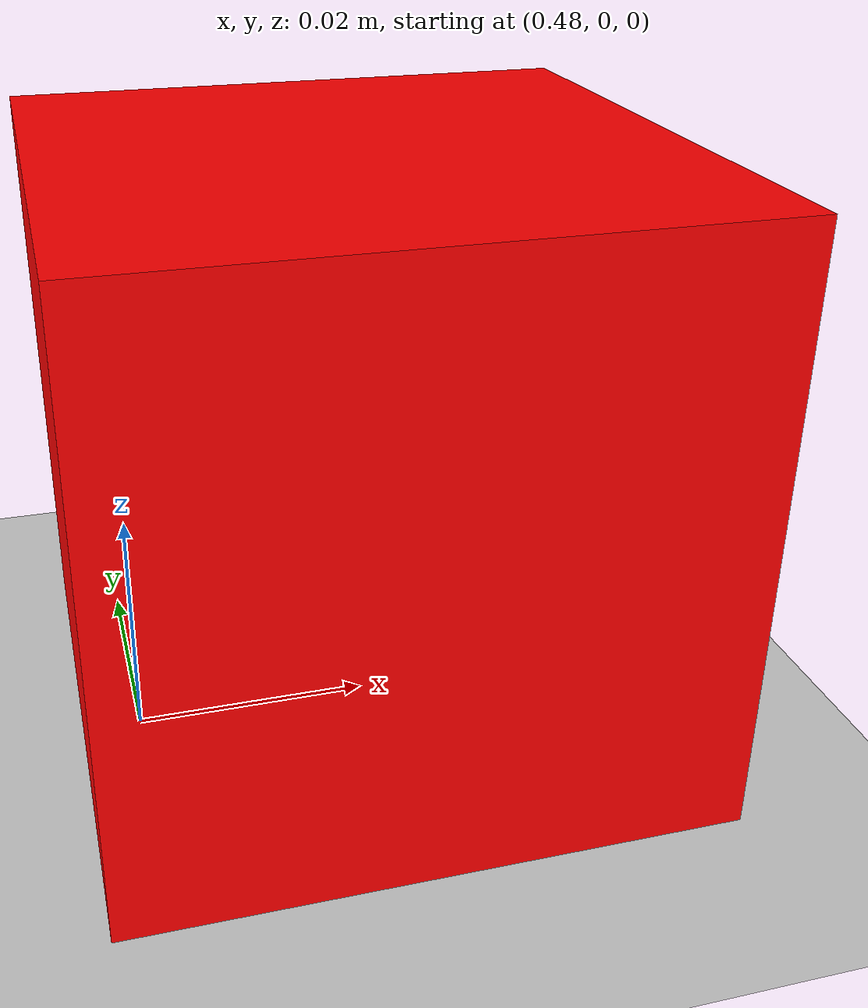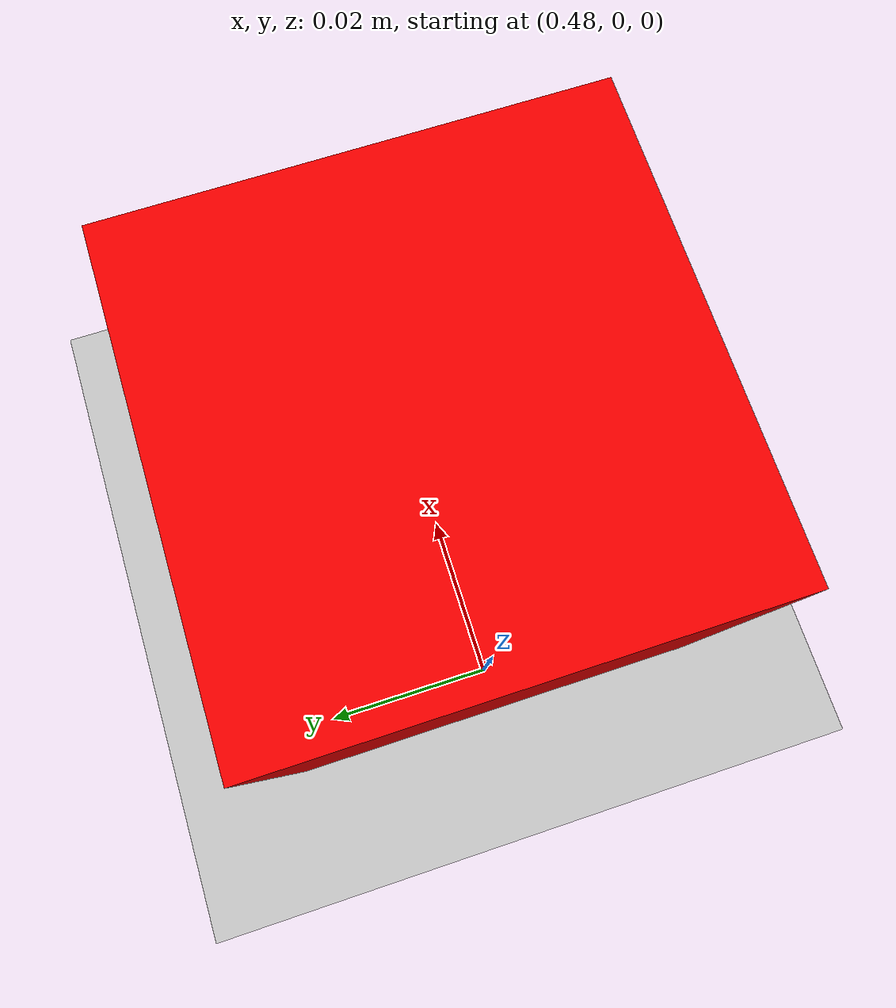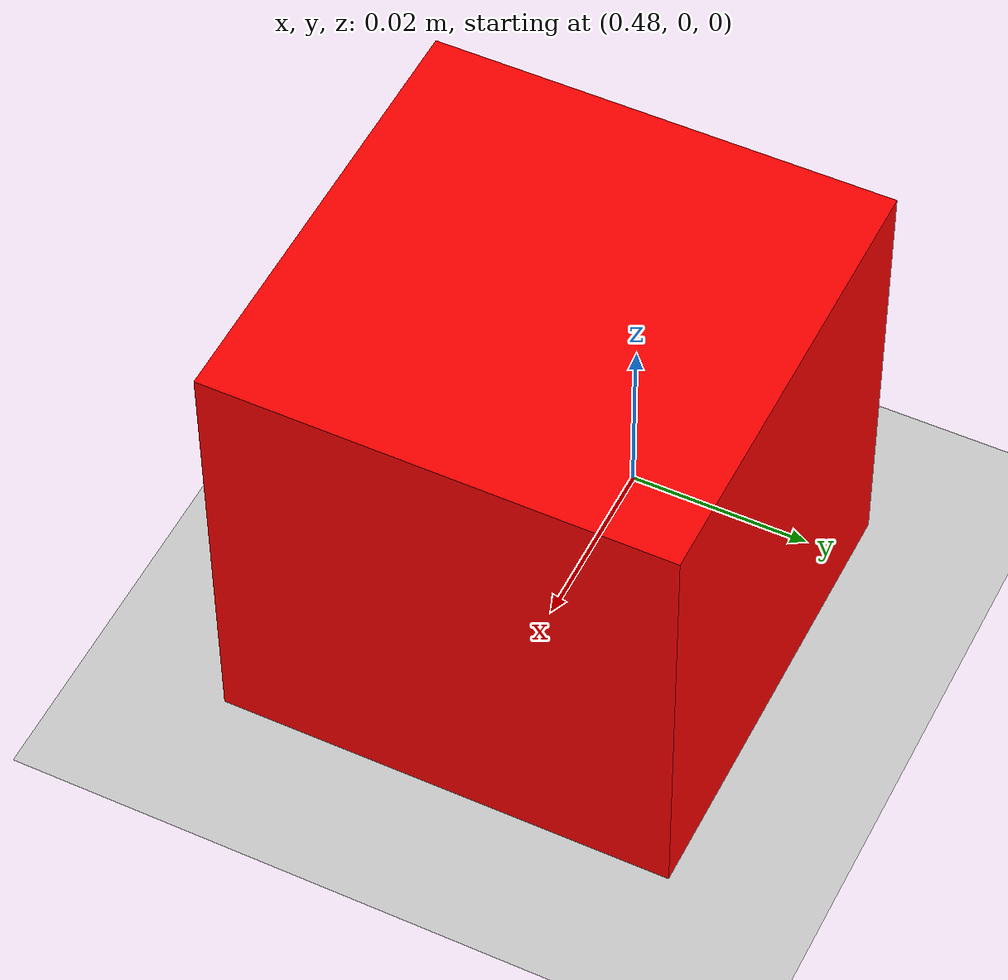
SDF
<?xml version="1.0" ?>
<sdf version="1.6">
  <world name="pick_place_world">

    <model name="ground_plane">
      <static>true</static>
      <link name="link">
        <collision name="collision">
          <geometry>
            <plane>
              <normal>0 0 1</normal>
              <size>10 10</size>
            </plane>
          </geometry>
        </collision>
        <visual name="visual">
          <geometry>
            <plane>
              <normal>0 0 1</normal>
              <size>10 10</size>
            </plane>
          </geometry>
        </visual>
      </link>
    </model>

    <light name="sun" type="directional">
      <cast_shadows>true</cast_shadows>
      <pose>0 0 10 0 0 0</pose>
      <diffuse>1 1 1 1</diffuse>
      <specular>0.1 0.1 0.1 1</specular>
      <attenuation>
        <range>1000</range>
        <constant>0.9</constant>
        <linear>0.01</linear>
        <quadratic>0.001</quadratic>
      </attenuation>
      <direction>-0.5 0.5 -1</direction>
    </light>

    <model name="pick_object">
      <pose>0.5 0.0 0.025 0 0 0</pose>
      <static>true</static>
      <link name="link">
        <visual name="visual">
          <geometry>
            <box>
              <size>0.05 0.05 0.05</size>
            </box>
          </geometry>
          <material>
            <ambient>1 0 0 1</ambient>
            <diffuse>1 0 0 1</diffuse>
          </material>
        </visual>
        <collision name="collision">
          <geometry>
            <box>
              <size>0.05 0.05 0.05</size>
            </box>
          </geometry>
        </collision>
      </link>
    </model>

  </world>
</sdf>
